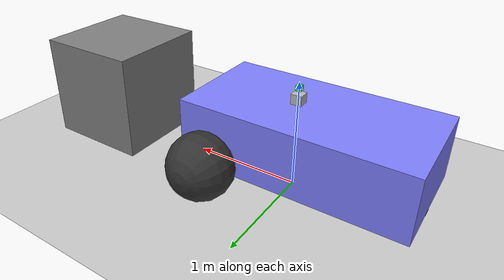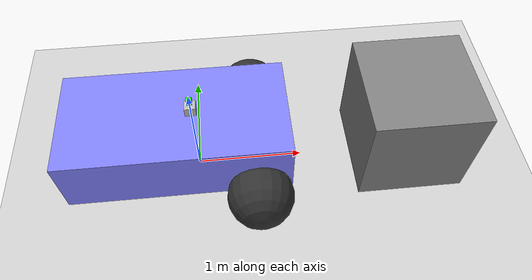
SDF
<?xml version="1.0" ?>
<sdf version="1.8">
  <world name="demo">
    <plugin
      filename="gz-sim-physics-system"
      name="gz::sim::systems::Physics">
    </plugin>
    <plugin
      filename="gz-sim-sensors-system"
      name="gz::sim::systems::Sensors">
      <render_engine>ogre2</render_engine>
    </plugin>
    <plugin
      filename="gz-sim-scene-broadcaster-system"
      name="gz::sim::systems::SceneBroadcaster">
    </plugin>
    <plugin
      filename="gz-sim-user-commands-system"
      name="gz::sim::systems::UserCommands">
    </plugin>
    <plugin
      filename="BasicSystem"
      name="ros_gz_example_gazebo::BasicSystem">
    </plugin>
    <plugin
      filename="FullSystem"
      name="ros_gz_example_gazebo::FullSystem">
    </plugin>

    <light name="sun" type="directional">
      <cast_shadows>true</cast_shadows>
      <pose>0 0 10 0 0 0</pose>
      <diffuse>0.8 0.8 0.8 1</diffuse>
      <specular>0.2 0.2 0.2 1</specular>
      <attenuation>
        <range>1000</range>
        <constant>0.9</constant>
        <linear>0.01</linear>
        <quadratic>0.001</quadratic>
      </attenuation>
      <direction>-0.5 0.1 -0.9</direction>
    </light>

    <model name="ground_plane">
      <static>true</static>
      <link name="link">
        <collision name="collision">
          <geometry>
            <plane>
              <normal>0 0 1</normal>
              <size>100 100</size>
            </plane>
          </geometry>
        </collision>
        <visual name="visual">
          <geometry>
            <plane>
              <normal>0 0 1</normal>
              <size>100 100</size>
            </plane>
          </geometry>
          <material>
            <ambient>0.8 0.8 0.8 1</ambient>
            <diffuse>0.8 0.8 0.8 1</diffuse>
            <specular>0.8 0.8 0.8 1</specular>
          </material>
        </visual>
      </link>
    </model>

    <model name="diff_drive">
      <self_collide>true</self_collide>
      <pose>0 0 0.35 0 0 0</pose>
      <include merge="true">
        <uri>package://ros_gz_example_description/models/diff_drive</uri>
      </include>

      <plugin
        filename="gz-sim-joint-state-publisher-system"
        name="gz::sim::systems::JointStatePublisher">
      </plugin>

      <plugin
        filename="gz-sim-pose-publisher-system"
        name="gz::sim::systems::PosePublisher">
        <publish_link_pose>true</publish_link_pose>
        <use_pose_vector_msg>true</use_pose_vector_msg>
        <static_publisher>true</static_publisher>
        <static_update_frequency>1</static_update_frequency>
      </plugin>

      <plugin
        filename="gz-sim-odometry-publisher-system"
        name="gz::sim::systems::OdometryPublisher">
        <odom_frame>diff_drive/odom</odom_frame>
        <robot_base_frame>diff_drive</robot_base_frame>
      </plugin>
    </model>

    <include>
      <uri>package://ros_gz_example_description/models/aruco_box_1</uri>
      <name>aruco_box_1</name>
      <pose>2 0 0.5 0 0 0</pose>
    </include>
  </world>
</sdf>

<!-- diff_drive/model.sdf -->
<sdf version="1.8">
    <model name='diff_drive'>
      <link name='chassis'>
        <pose>-0.151427 -0 0.175 0 -0 0</pose>
        <inertial>
          <mass>1.14395</mass>
          <inertia>
            <ixx>0.126164</ixx>
            <ixy>0</ixy>
            <ixz>0</ixz>
            <iyy>0.416519</iyy>
            <iyz>0</iyz>
            <izz>0.481014</izz>
          </inertia>
        </inertial>
        <visual name='visual_chassis'>
          <geometry>
            <box>
              <size>2.01142 1 0.568726</size>
            </box>
          </geometry>
          <material>
            <ambient>0.5 0.5 1.0 1</ambient>
            <diffuse>0.5 0.5 1.0 1</diffuse>
            <specular>0.0 0.0 1.0 1</specular>
          </material>
        </visual>
        <collision name='collision_chassis'>
          <geometry>
            <box>
              <size>2.01142 1 0.568726</size>
            </box>
          </geometry>
        </collision>
      </link>

      <link name='left_wheel'>
        <pose>0.554283 0.625029 -0.025 -1.5707 0 0</pose>
        <inertial>
          <mass>2</mass>
          <inertia>
            <ixx>0.145833</ixx>
            <ixy>0</ixy>
            <ixz>0</ixz>
            <iyy>0.145833</iyy>
            <iyz>0</iyz>
            <izz>0.125</izz>
          </inertia>
        </inertial>
        <visual name='visual_left_wheel'>
          <geometry>
            <sphere>
              <radius>0.3</radius>
            </sphere>
          </geometry>
          <material>
            <ambient>0.2 0.2 0.2 1</ambient>
            <diffuse>0.2 0.2 0.2 1</diffuse>
            <specular>0.2 0.2 0.2 1</specular>
          </material>
        </visual>
        <collision name='collision_left_wheel'>
          <geometry>
            <sphere>
              <radius>0.3</radius>
            </sphere>
          </geometry>
        </collision>
      </link>

      <link name='right_wheel'>
        <pose>0.554282 -0.625029 -0.025 -1.5707 0 0</pose>
        <inertial>
          <mass>2</mass>
          <inertia>
            <ixx>0.145833</ixx>
            <ixy>0</ixy>
            <ixz>0</ixz>
            <iyy>0.145833</iyy>
            <iyz>0</iyz>
            <izz>0.125</izz>
          </inertia>
        </inertial>
        <visual name='visual_right_wheel'>
          <geometry>
            <sphere>
              <radius>0.3</radius>
            </sphere>
          </geometry>
          <material>
            <ambient>0.2 0.2 0.2 1</ambient>
            <diffuse>0.2 0.2 0.2 1</diffuse>
            <specular>0.2 0.2 0.2 1</specular>
          </material>
        </visual>
        <collision name='collision_right_wheel'>
          <geometry>
            <sphere>
              <radius>0.3</radius>
            </sphere>
          </geometry>
        </collision>
      </link>

      <link name='caster'>
        <pose>-0.957138 -0 -0.125 0 -0 0</pose>
        <inertial>
          <mass>1</mass>
          <inertia>
            <ixx>0.1</ixx>
            <ixy>0</ixy>
            <ixz>0</ixz>
            <iyy>0.1</iyy>
            <iyz>0</iyz>
            <izz>0.1</izz>
          </inertia>
        </inertial>
        <visual name='visual_caster'>
          <geometry>
            <sphere>
              <radius>0.2</radius>
            </sphere>
          </geometry>
          <material>
            <ambient>0.2 0.2 0.2 1</ambient>
            <diffuse>0.2 0.2 0.2 1</diffuse>
            <specular>0.2 0.2 0.2 1</specular>
          </material>
        </visual>
        <collision name='collision_caster'>
          <geometry>
            <sphere>
              <radius>0.2</radius>
            </sphere>
          </geometry>
        </collision>
      </link>

      <link name="lidar_link">
        <pose>0 0 0.5 0 0 0</pose>
        <inertial>
          <mass>0.1</mass>
          <inertia>
            <ixx>0.000166667</ixx>
            <iyy>0.000166667</iyy>
            <izz>0.000166667</izz>
          </inertia>
        </inertial>
        <collision name="collision">
          <geometry>
            <box>
              <size>0.1 0.1 0.1</size>
            </box>
          </geometry>
        </collision>
        <visual name="visual">
          <geometry>
            <box>
              <size>0.1 0.1 0.1</size>
            </box>
          </geometry>
        </visual>
        <sensor name='gpu_lidar' type='gpu_lidar'>
          <pose>0 0 0 0 0 0</pose>
          <topic>scan</topic>
           <gz_frame_id>diff_drive/lidar_link</gz_frame_id>
          <update_rate>10</update_rate>
          <lidar>
            <scan>
              <horizontal>
                <samples>640</samples>
                <resolution>1</resolution>
                <min_angle>-1.396263</min_angle>
                <max_angle>1.396263</max_angle>
              </horizontal>
              <vertical>
                <samples>1</samples>
                <resolution>1</resolution>
                <min_angle>0.0</min_angle>
                <max_angle>0.0</max_angle>
              </vertical>
            </scan>
            <range>
              <min>0.08</min>
              <max>10.0</max>
              <resolution>0.01</resolution>
            </range>
          </lidar>
          <visualize>true</visualize>
        </sensor>
      </link>

      <joint name='lidar_joint' type='fixed'>
        <parent>chassis</parent>
        <child>lidar_link</child>
      </joint>

      <link name="camera_link">
        <pose>0 0 0.6 0 0 0</pose>
        <inertial>
          <mass>0.1</mass>
          <inertia>
            <ixx>0.000166667</ixx>
            <iyy>0.000166667</iyy>
            <izz>0.000166667</izz>
          </inertia>
        </inertial>
        <collision name="collision">
          <geometry>
            <box>
              <size>0.05 0.05 0.05</size>
            </box>
          </geometry>
        </collision>
        <visual name="visual">
          <geometry>
            <box>
              <size>0.05 0.05 0.05</size>
            </box>
          </geometry>
          <material>
            <ambient>0 1 0 1</ambient>
            <diffuse>0 1 0 1</diffuse>
            <specular>0 1 0 1</specular>
          </material>
        </visual>
        <sensor name='camera' type='camera'>
          <topic>camera</topic>
          <gz_frame_id>diff_drive/camera_link</gz_frame_id>
          <update_rate>30</update_rate>
          <camera>
            <horizontal_fov>1.047</horizontal_fov>
            <image>
              <width>640</width>
              <height>480</height>
              <format>R8G8B8</format>
            </image>
            <clip>
              <near>0.1</near>
              <far>100</far>
            </clip>
          </camera>
          <always_on>1</always_on>
          <update_rate>30</update_rate>
          <visualize>true</visualize>
        </sensor>
      </link>

      <joint name='camera_joint' type='fixed'>
        <parent>chassis</parent>
        <child>camera_link</child>
      </joint>

      <joint name='left_wheel_joint' type='revolute'>
        <parent>chassis</parent>
        <child>left_wheel</child>
        <axis>
          <xyz>0 0 1</xyz>
          <limit>
            <lower>-1.79769e+308</lower>
            <upper>1.79769e+308</upper>
          </limit>
        </axis>
      </joint>

      <joint name='right_wheel_joint' type='revolute'>
        <parent>chassis</parent>
        <child>right_wheel</child>
        <axis>
          <xyz>0 0 1</xyz>
          <limit>
            <lower>-1.79769e+308</lower>
            <upper>1.79769e+308</upper>
          </limit>
        </axis>
      </joint>

      <joint name='caster_wheel' type='ball'>
        <parent>chassis</parent>
        <child>caster</child>
      </joint>

      <link name='gnss_link'>
        <pose>0 0 0.1 0 0 0</pose>
        <inertial>
          <mass>0.01</mass>
        </inertial>
        <sensor name='navsat_sensor' type='navsat'>
            <topic>/navsat</topic>
            <update_rate>10</update_rate>
            <always_on>true</always_on>
            <visualize>false</visualize>
        </sensor>
      </link>
      <joint name='gnss_joint' type='fixed'>
        <parent>chassis</parent>
        <child>gnss_link</child>
      </joint>
      <plugin
        filename="ignition-gazebo-diff-drive-system"
        name="ignition::gazebo::systems::DiffDrive">
        <left_joint>left_wheel_joint</left_joint>
        <right_joint>right_wheel_joint</right_joint>
        <wheel_separation>1.25</wheel_separation>
        <wheel_radius>0.3</wheel_radius>
        <odom_publish_frequency>1</odom_publish_frequency>
        <max_linear_acceleration>1</max_linear_acceleration>
        <min_linear_acceleration>-1</min_linear_acceleration>
        <max_angular_acceleration>2</max_angular_acceleration>
        <min_angular_acceleration>-2</min_angular_acceleration>
        <max_linear_velocity>0.5</max_linear_velocity>
        <min_linear_velocity>-0.5</min_linear_velocity>
        <max_angular_velocity>1</max_angular_velocity>
        <min_angular_velocity>-1</min_angular_velocity>
      </plugin>
    </model>
</sdf>

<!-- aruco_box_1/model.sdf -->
<sdf version="1.9">
  <model name="aruco_box_1">
    <static>true</static>
    <link name="box_link">
      <inertial>
        <mass>1.0</mass>
        <inertia>
          <ixx>0.166667</ixx>
          <ixy>0</ixy>
          <ixz>0</ixz>
          <iyy>0.166667</iyy>
          <iyz>0</iyz>
          <izz>0.166667</izz>
        </inertia>
      </inertial>

      <!-- Main grey box visual -->
      <visual name="box_visual">
        <geometry>
          <box>
            <size>1.0 1.0 1.0</size>
          </box>
        </geometry>
        <material>
          <ambient>0.5 0.5 0.5 1</ambient>
          <diffuse>0.5 0.5 0.5 1</diffuse>
          <specular>0.1 0.1 0.1 1</specular>
        </material>
      </visual>

      <!-- ArUco marker on front face -->
      <visual name="aruco_marker_visual">
        <pose>0.505 0 0 0 0 0</pose>
        <geometry>
          <box>
            <size>0.001 0.6 0.6</size>
          </box>
        </geometry>
        <material>
          <pbr>
            <metal>
              <albedo_map>file:///home/cameron/robotics_2026/auto-nav-f2025/Testing_gazebo_ros2_bridge/ros_gz_project_template/ros_gz_example_description/models/aruco_box_1/materials/textures/marker_1.png</albedo_map>
            </metal>
          </pbr>
        </material>
      </visual>

      <!-- Collision -->
      <collision name="box_collision">
        <geometry>
          <box>
            <size>1.0 1.0 1.0</size>
          </box>
        </geometry>
      </collision>
    </link>
  </model>
</sdf>
